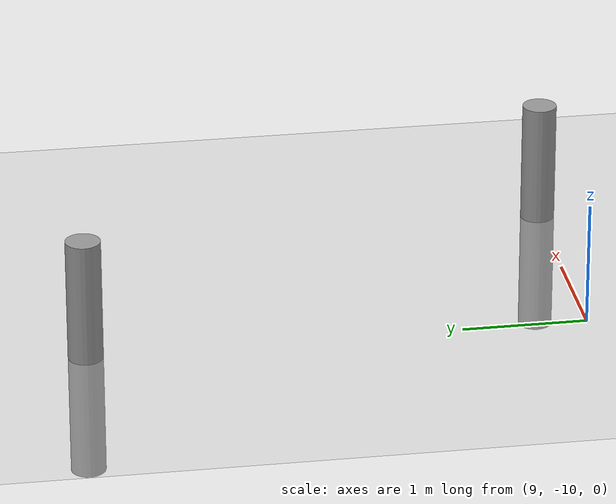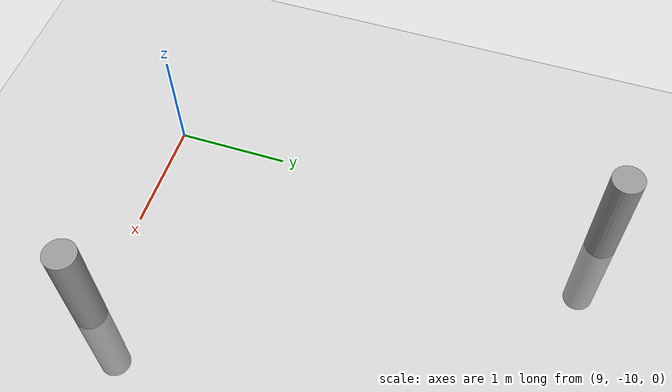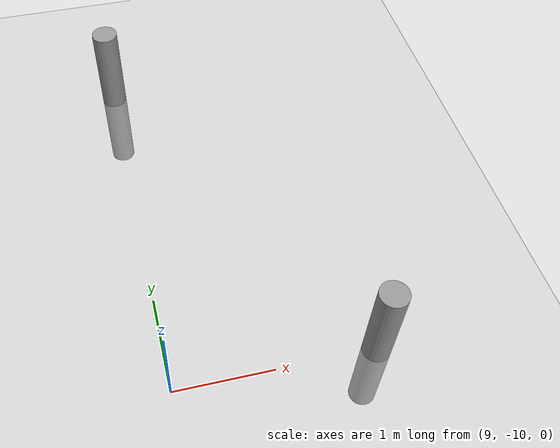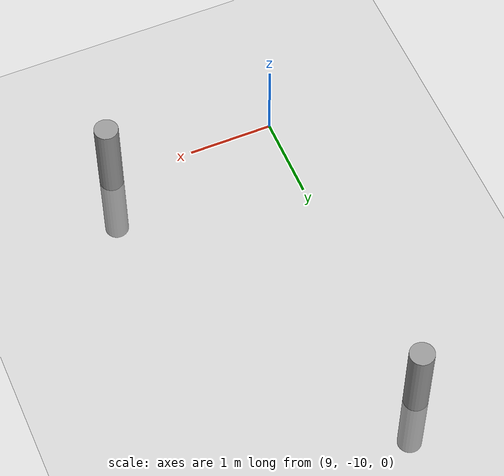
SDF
<sdf version="1.6">
 <world name="default">
  <model name="ground_plane">
   <static>1</static>
   <link name="link">
    <collision name="collision">
     <geometry><plane><normal>0 0 1</normal><size>100 100</size></plane></geometry>
     <surface><friction><ode><mu>100</mu><mu2>50</mu2></ode></friction></surface>
    </collision>
    <visual name="visual">
     <cast_shadows>0</cast_shadows>
     <geometry><plane><normal>0 0 1</normal><size>100 100</size></plane></geometry>
     <material>
      <script><uri>file://media/materials/scripts/gazebo.material</uri><name>Gazebo/Grey</name></script>
     </material>
    </visual>
   </link>
  </model>
  <model name="my_cylinder014_clone_44">
   <pose>9 -6 0 0 -0 0</pose>
   <link name="my_cylinder014::link">
    <inertial>
     <mass>1</mass>
     <inertia><ixx>0.145833</ixx><ixy>0</ixy><ixz>0</ixz><iyy>0.145833</iyy><iyz>0</iyz><izz>0.125</izz></inertia>
    </inertial>
    <visual name="visual">
     <geometry><cylinder><radius>0.14</radius><length>2</length></cylinder></geometry>
     <material>
      <script><name>Gazebo/Grey</name><uri>file://media/materials/scripts/gazebo.material</uri></script>
      <ambient>0.3 0.3 0.3 1</ambient>
      <diffuse>0.7 0.7 0.7 1</diffuse>
      <specular>1 0.01 0.01 1</specular>
      <emissive>0 0 0 1</emissive>
      <shader type="vertex"><normal_map>__default__</normal_map></shader>
     </material>
    </visual>
    <collision name="collision">
     <geometry><cylinder><radius>0.14</radius><length>2</length></cylinder></geometry>
     <surface>
      <friction>
       <ode><mu>1</mu><mu2>1</mu2><fdir1>0 0 0</fdir1><slip1>0</slip1><slip2>0</slip2></ode>
       <torsional>
        <coefficient>1</coefficient>
        <patch_radius>0</patch_radius>
        <surface_radius>0</surface_radius>
        <use_patch_radius>1</use_patch_radius>
        <ode><slip>0</slip></ode>
       </torsional>
      </friction>
      <bounce><restitution_coefficient>0</restitution_coefficient><threshold>1e+06</threshold></bounce>
      <contact>
       <collide_without_contact>0</collide_without_contact>
       <collide_without_contact_bitmask>1</collide_without_contact_bitmask>
       <collide_bitmask>1</collide_bitmask>
       <ode>
        <soft_cfm>0</soft_cfm>
        <soft_erp>0.2</soft_erp>
        <kp>1e+13</kp>
        <kd>1</kd>
        <max_vel>0.01</max_vel>
        <min_depth>0</min_depth>
       </ode>
       <bullet>
        <split_impulse>1</split_impulse>
        <split_impulse_penetration_threshold>-0.01</split_impulse_penetration_threshold>
        <soft_cfm>0</soft_cfm>
        <soft_erp>0.2</soft_erp>
        <kp>1e+13</kp>
        <kd>1</kd>
       </bullet>
      </contact>
     </surface>
    </collision>
   </link>
   <static>1</static>
  </model>
  <model name="my_cylinder014_clone_29">
   <pose>11 -10 0 0 -0 0</pose>
   <link name="my_cylinder014::link">
    <inertial>
     <mass>1</mass>
     <inertia><ixx>0.145833</ixx><ixy>0</ixy><ixz>0</ixz><iyy>0.145833</iyy><iyz>0</iyz><izz>0.125</izz></inertia>
    </inertial>
    <visual name="visual">
     <geometry><cylinder><radius>0.14</radius><length>2</length></cylinder></geometry>
     <material>
      <script><name>Gazebo/Grey</name><uri>file://media/materials/scripts/gazebo.material</uri></script>
      <ambient>0.3 0.3 0.3 1</ambient>
      <diffuse>0.7 0.7 0.7 1</diffuse>
      <specular>1 0.01 0.01 1</specular>
      <emissive>0 0 0 1</emissive>
      <shader type="vertex"><normal_map>__default__</normal_map></shader>
     </material>
    </visual>
    <collision name="collision">
     <geometry><cylinder><radius>0.14</radius><length>2</length></cylinder></geometry>
     <surface>
      <friction>
       <ode><mu>1</mu><mu2>1</mu2><fdir1>0 0 0</fdir1><slip1>0</slip1><slip2>0</slip2></ode>
       <torsional>
        <coefficient>1</coefficient>
        <patch_radius>0</patch_radius>
        <surface_radius>0</surface_radius>
        <use_patch_radius>1</use_patch_radius>
        <ode><slip>0</slip></ode>
       </torsional>
      </friction>
      <bounce><restitution_coefficient>0</restitution_coefficient><threshold>1e+06</threshold></bounce>
      <contact>
       <collide_without_contact>0</collide_without_contact>
       <collide_without_contact_bitmask>1</collide_without_contact_bitmask>
       <collide_bitmask>1</collide_bitmask>
       <ode>
        <soft_cfm>0</soft_cfm>
        <soft_erp>0.2</soft_erp>
        <kp>1e+13</kp>
        <kd>1</kd>
        <max_vel>0.01</max_vel>
        <min_depth>0</min_depth>
       </ode>
       <bullet>
        <split_impulse>1</split_impulse>
        <split_impulse_penetration_threshold>-0.01</split_impulse_penetration_threshold>
        <soft_cfm>0</soft_cfm>
        <soft_erp>0.2</soft_erp>
        <kp>1e+13</kp>
        <kd>1</kd>
       </bullet>
      </contact>
     </surface>
    </collision>
   </link>
   <static>1</static>
  </model>
  <model name="my_cylinder014_clone_29">
   <pose>11 -10 0 0 -0 0</pose>
   <link name="my_cylinder014::link">
    <inertial>
     <mass>1</mass>
     <inertia><ixx>0.145833</ixx><ixy>0</ixy><ixz>0</ixz><iyy>0.145833</iyy><iyz>0</iyz><izz>0.125</izz></inertia>
    </inertial>
    <visual name="visual">
     <geometry><cylinder><radius>0.14</radius><length>2</length></cylinder></geometry>
     <material>
      <script><name>Gazebo/Grey</name><uri>file://media/materials/scripts/gazebo.material</uri></script>
      <ambient>0.3 0.3 0.3 1</ambient>
      <diffuse>0.7 0.7 0.7 1</diffuse>
      <specular>1 0.01 0.01 1</specular>
      <emissive>0 0 0 1</emissive>
      <shader type="vertex"><normal_map>__default__</normal_map></shader>
     </material>
    </visual>
    <collision name="collision">
     <geometry><cylinder><radius>0.14</radius><length>2</length></cylinder></geometry>
     <surface>
      <friction>
       <ode><mu>1</mu><mu2>1</mu2><fdir1>0 0 0</fdir1><slip1>0</slip1><slip2>0</slip2></ode>
       <torsional>
        <coefficient>1</coefficient>
        <patch_radius>0</patch_radius>
        <surface_radius>0</surface_radius>
        <use_patch_radius>1</use_patch_radius>
        <ode><slip>0</slip></ode>
       </torsional>
      </friction>
      <bounce><restitution_coefficient>0</restitution_coefficient><threshold>1e+06</threshold></bounce>
      <contact>
       <collide_without_contact>0</collide_without_contact>
       <collide_without_contact_bitmask>1</collide_without_contact_bitmask>
       <collide_bitmask>1</collide_bitmask>
       <ode>
        <soft_cfm>0</soft_cfm>
        <soft_erp>0.2</soft_erp>
        <kp>1e+13</kp>
        <kd>1</kd>
        <max_vel>0.01</max_vel>
        <min_depth>0</min_depth>
       </ode>
       <bullet>
        <split_impulse>1</split_impulse>
        <split_impulse_penetration_threshold>-0.01</split_impulse_penetration_threshold>
        <soft_cfm>0</soft_cfm>
        <soft_erp>0.2</soft_erp>
        <kp>1e+13</kp>
        <kd>1</kd>
       </bullet>
      </contact>
     </surface>
    </collision>
   </link>
   <static>1</static>
  </model>
 </world>
</sdf>
